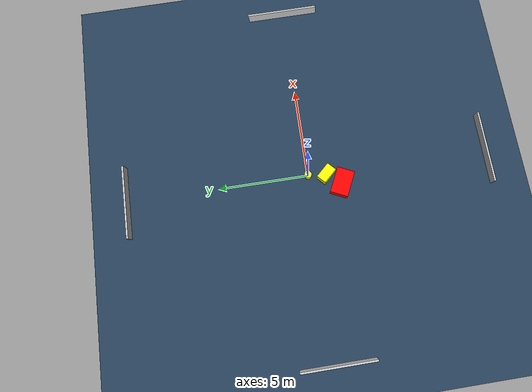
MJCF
<?xml version="1.0" ?>
<mujoco model="generated_environment">
  <option timestep="0.01" integrator="RK4" cone="elliptic"/>
  <default>
    <geom density="1"/>
  </default>
  <asset>
    <texture builtin="gradient" height="3072" name="skybox" rgb1="0.3 0.5 0.7" rgb2="0 0 0" type="skybox" width="512"/>
    <texture builtin="checker" height="300" name="groundplane" rgb1="0.2 0.3 0.4" rgb2="0.1 0.2 0.3" type="2d" width="300"/>
    <material name="groundplane" reflectance="0.2" texrepeat="5 5" texture="groundplane"/>
  </asset>
  <worldbody>
    <light dir="0 0 -1" directional="true" pos="0 0 1.5"/>
    <geom condim="3" friction="0.5 0.005 0.001" material="groundplane" name="floor" pos="0 0 0" size="0 0 0.05" type="plane"/>
    <body name="walls">
      <geom name="wall_1" condim="4" pos="-10.0 0.0 0.3" rgba="0.800000011920929 0.800000011920929 0.800000011920929 1.0" size="0.05 2.0 0.3" type="box"/>
      <geom name="wall_2" condim="4" pos="10.0 0.0 0.3" rgba="0.800000011920929 0.800000011920929 0.800000011920929 1.0" size="0.05 2.0 0.3" type="box"/>
      <geom name="wall_3" condim="4" pos="0.0 -10.0 0.3" rgba="0.800000011920929 0.800000011920929 0.800000011920929 1.0" size="2.0 0.05 0.3" type="box"/>
      <geom name="wall_4" condim="4" pos="0.0 10.0 0.3" rgba="0.800000011920929 0.800000011920929 0.800000011920929 1.0" size="2.0 0.05 0.3" type="box"/>
    </body>
    <body name="robot">
      <joint name="joint_x" type="slide" pos="0 0 0" axis="1 0 0"/>
      <joint name="joint_y" type="slide" pos="0 0 0" axis="0 1 0"/>
      <geom name="robot" type="cylinder" pos="0.0 0.0 0.2" size="0.2 0.2 0.0" mass="5.0" friction="1.0 0.005 0.0001" condim="4" rgba="1.0 1.0 0.0 1.0"/>
    </body>
    <body name="obstacle_1_movable">
      <geom name="obstacle_1_movable" condim="4" pos="-0.1191636645872416 -1.0016695537814904 0.3" euler="0 0 222.80893357457416" friction="0.0 0.005 0.001" rgba="1.0 1.0 0.0 1.0" size="0.2839587656258401 0.47593518082898717 0.3" type="box" mass="0.1"/>
      <joint type="free"/>
    </body>
    <body name="obstacle_2_static">
      <geom name="obstacle_2_static" condim="4" pos="-0.7356583240065753 -1.7831823772741806 0.3" euler="0 0 244.52405547603692" friction="0.0 0.005 0.001" rgba="1.0 0.0 0.0 1.0" size="0.49244618620462866 0.720871979566936 0.3" type="box"/>
    </body>
  </worldbody>
  <actuator>
    <motor name="actuator_x" joint="joint_x" gear="1" ctrlrange="-1 1"/>
    <motor name="actuator_y" joint="joint_y" gear="1" ctrlrange="-1 1"/>
  </actuator>
</mujoco>
